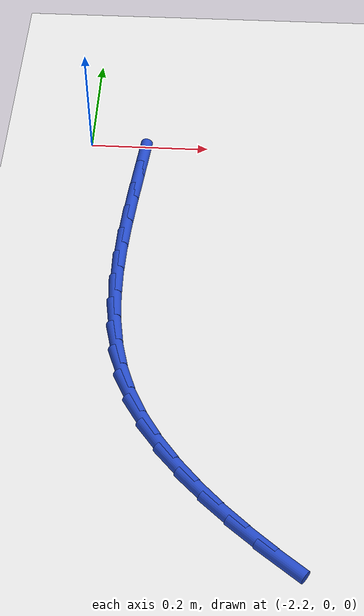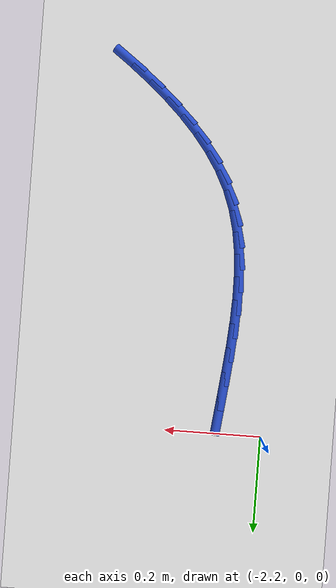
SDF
<sdf version="1.6">
 <world name="default">
  <model name="ground_plane">
   <static>1</static>
   <link name="link">
    <collision name="collision">
     <geometry><plane><normal>0 0 1</normal><size>100 100</size></plane></geometry>
     <surface><friction><ode><mu>100</mu><mu2>50</mu2></ode></friction></surface>
    </collision>
    <visual name="visual">
     <cast_shadows>0</cast_shadows>
     <geometry><plane><normal>0 0 1</normal><size>100 100</size></plane></geometry>
     <material>
      <script><uri>file://media/materials/scripts/gazebo.material</uri><name>Gazebo/WhiteGlow</name></script>
     </material>
    </visual>
   </link>
  </model>
  <model name="line">
   <link name="link_70">
    <pose>-2.109016750965219 -0.03887070346182893 0.01 0 1.57 1.4577025907081003</pose>
    <collision name="collision">
     <geometry><cylinder><radius>0.01</radius><length>0.08</length></cylinder></geometry>
    </collision>
    <visual name="visual">
     <material>
      <script><name>Gazebo/Blue</name><uri>file://media/materials/scripts/gazebo.material</uri></script>
     </material>
     <geometry><cylinder><radius>0.01</radius><length>0.08</length></cylinder></geometry>
    </visual>
   </link>
   <link name="link_71">
    <pose>-2.114923439792665 -0.09087610153658539 0.01 0 1.57 1.4601256677248313</pose>
    <collision name="collision">
     <geometry><cylinder><radius>0.01</radius><length>0.08</length></cylinder></geometry>
    </collision>
    <visual name="visual">
     <material>
      <script><name>Gazebo/Blue</name><uri>file://media/materials/scripts/gazebo.material</uri></script>
     </material>
     <geometry><cylinder><radius>0.01</radius><length>0.08</length></cylinder></geometry>
    </visual>
   </link>
   <link name="link_72">
    <pose>-2.120619317843265 -0.14213272842029662 0.01 0 1.57 1.4730457235114607</pose>
    <collision name="collision">
     <geometry><cylinder><radius>0.01</radius><length>0.08</length></cylinder></geometry>
    </collision>
    <visual name="visual">
     <material>
      <script><name>Gazebo/Blue</name><uri>file://media/materials/scripts/gazebo.material</uri></script>
     </material>
     <geometry><cylinder><radius>0.01</radius><length>0.08</length></cylinder></geometry>
    </visual>
   </link>
   <link name="link_73">
    <pose>-2.1255624448381787 -0.19254032319982312 0.01 0 1.57 1.4971617871678637</pose>
    <collision name="collision">
     <geometry><cylinder><radius>0.01</radius><length>0.08</length></cylinder></geometry>
    </collision>
    <visual name="visual">
     <material>
      <script><name>Gazebo/Blue</name><uri>file://media/materials/scripts/gazebo.material</uri></script>
     </material>
     <geometry><cylinder><radius>0.01</radius><length>0.08</length></cylinder></geometry>
    </visual>
   </link>
   <link name="link_74">
    <pose>-2.129210880498562 -0.24199862496202293 0.01 0 1.57 1.5333865847660677</pose>
    <collision name="collision">
     <geometry><cylinder><radius>0.01</radius><length>0.08</length></cylinder></geometry>
    </collision>
    <visual name="visual">
     <material>
      <script><name>Gazebo/Blue</name><uri>file://media/materials/scripts/gazebo.material</uri></script>
     </material>
     <geometry><cylinder><radius>0.01</radius><length>0.08</length></cylinder></geometry>
    </visual>
   </link>
   <link name="link_75">
    <pose>-2.131022684545576 -0.29040737279375656 0.01 0 1.57 -1.5588040823788425</pose>
    <collision name="collision">
     <geometry><cylinder><radius>0.01</radius><length>0.08</length></cylinder></geometry>
    </collision>
    <visual name="visual">
     <material>
      <script><name>Gazebo/Blue</name><uri>file://media/materials/scripts/gazebo.material</uri></script>
     </material>
     <geometry><cylinder><radius>0.01</radius><length>0.08</length></cylinder></geometry>
    </visual>
   </link>
   <link name="link_76">
    <pose>-2.130455916700377 -0.3376663057818838 0.01 0 1.57 -1.4951451370231805</pose>
    <collision name="collision">
     <geometry><cylinder><radius>0.01</radius><length>0.08</length></cylinder></geometry>
    </collision>
    <visual name="visual">
     <material>
      <script><name>Gazebo/Blue</name><uri>file://media/materials/scripts/gazebo.material</uri></script>
     </material>
     <geometry><cylinder><radius>0.01</radius><length>0.08</length></cylinder></geometry>
    </visual>
   </link>
   <link name="link_77">
    <pose>-2.126968636684125 -0.38367516301326415 0.01 0 1.57 -1.4164152090351878</pose>
    <collision name="collision">
     <geometry><cylinder><radius>0.01</radius><length>0.08</length></cylinder></geometry>
    </collision>
    <visual name="visual">
     <material>
      <script><name>Gazebo/Blue</name><uri>file://media/materials/scripts/gazebo.material</uri></script>
     </material>
     <geometry><cylinder><radius>0.01</radius><length>0.08</length></cylinder></geometry>
    </visual>
   </link>
   <link name="link_78">
    <pose>-2.1200189042179773 -0.42833368357475804 0.01 0 1.57 -1.3225063331948141</pose>
    <collision name="collision">
     <geometry><cylinder><radius>0.01</radius><length>0.08</length></cylinder></geometry>
    </collision>
    <visual name="visual">
     <material>
      <script><name>Gazebo/Blue</name><uri>file://media/materials/scripts/gazebo.material</uri></script>
     </material>
     <geometry><cylinder><radius>0.01</radius><length>0.08</length></cylinder></geometry>
    </visual>
   </link>
   <link name="link_79">
    <pose>-2.1090647790230928 -0.47154160655322375 0.01 0 1.57 -1.2145734001211714</pose>
    <collision name="collision">
     <geometry><cylinder><radius>0.01</radius><length>0.08</length></cylinder></geometry>
    </collision>
    <visual name="visual">
     <material>
      <script><name>Gazebo/Blue</name><uri>file://media/materials/scripts/gazebo.material</uri></script>
     </material>
     <geometry><cylinder><radius>0.01</radius><length>0.08</length></cylinder></geometry>
    </visual>
   </link>
   <link name="link_80">
    <pose>-2.0935643208206303 -0.5131986710355217 0.01 0 1.57 -1.09858608623336</pose>
    <collision name="collision">
     <geometry><cylinder><radius>0.01</radius><length>0.08</length></cylinder></geometry>
    </collision>
    <visual name="visual">
     <material>
      <script><name>Gazebo/Blue</name><uri>file://media/materials/scripts/gazebo.material</uri></script>
     </material>
     <geometry><cylinder><radius>0.01</radius><length>0.08</length></cylinder></geometry>
    </visual>
   </link>
   <link name="link_81">
    <pose>-2.073119520883767 -0.5532276812550262 0.01 0 1.57 -0.9930406484010695</pose>
    <collision name="collision">
     <geometry><cylinder><radius>0.01</radius><length>0.08</length></cylinder></geometry>
    </collision>
    <visual name="visual">
     <material>
      <script><name>Gazebo/Blue</name><uri>file://media/materials/scripts/gazebo.material</uri></script>
     </material>
     <geometry><cylinder><radius>0.01</radius><length>0.08</length></cylinder></geometry>
    </visual>
   </link>
   <link name="link_82">
    <pose>-2.0480579460356987 -0.5916677155082605 0.01 0 1.57 -0.9030074856389123</pose>
    <collision name="collision">
     <geometry><cylinder><radius>0.01</radius><length>0.08</length></cylinder></geometry>
    </collision>
    <visual name="visual">
     <material>
      <script><name>Gazebo/Blue</name><uri>file://media/materials/scripts/gazebo.material</uri></script>
     </material>
     <geometry><cylinder><radius>0.01</radius><length>0.08</length></cylinder></geometry>
    </visual>
   </link>
   <link name="link_83">
    <pose>-2.0189352869341857 -0.6285944091189847 0.01 0 1.57 -0.8273752394986924</pose>
    <collision name="collision">
     <geometry><cylinder><radius>0.01</radius><length>0.08</length></cylinder></geometry>
    </collision>
    <visual name="visual">
     <material>
      <script><name>Gazebo/Blue</name><uri>file://media/materials/scripts/gazebo.material</uri></script>
     </material>
     <geometry><cylinder><radius>0.01</radius><length>0.08</length></cylinder></geometry>
    </visual>
   </link>
   <link name="link_84">
    <pose>-1.986307317270731 -0.6640834107171851 0.01 0 1.57 -0.7645911894296382</pose>
    <collision name="collision">
     <geometry><cylinder><radius>0.01</radius><length>0.08</length></cylinder></geometry>
    </collision>
    <visual name="visual">
     <material>
      <script><name>Gazebo/Blue</name><uri>file://media/materials/scripts/gazebo.material</uri></script>
     </material>
     <geometry><cylinder><radius>0.01</radius><length>0.08</length></cylinder></geometry>
    </visual>
   </link>
   <link name="link_85">
    <pose>-1.9507298107368356 -0.6982103689328466 0.01 0 1.57 -0.7130690652214379</pose>
    <collision name="collision">
     <geometry><cylinder><radius>0.01</radius><length>0.08</length></cylinder></geometry>
    </collision>
    <visual name="visual">
     <material>
      <script><name>Gazebo/Blue</name><uri>file://media/materials/scripts/gazebo.material</uri></script>
     </material>
     <geometry><cylinder><radius>0.01</radius><length>0.08</length></cylinder></geometry>
    </visual>
   </link>
   <link name="link_86">
    <pose>-1.9127585410240004 -0.7310509323959541 0.01 0 1.57 -0.6713992311692655</pose>
    <collision name="collision">
     <geometry><cylinder><radius>0.01</radius><length>0.08</length></cylinder></geometry>
    </collision>
    <visual name="visual">
     <material>
      <script><name>Gazebo/Blue</name><uri>file://media/materials/scripts/gazebo.material</uri></script>
     </material>
     <geometry><cylinder><radius>0.01</radius><length>0.08</length></cylinder></geometry>
    </visual>
   </link>
   <link name="link_87">
    <pose>-1.8729492818237268 -0.7626807497364934 0.01 0 1.57 -0.6384374612555435</pose>
    <collision name="collision">
     <geometry><cylinder><radius>0.01</radius><length>0.08</length></cylinder></geometry>
    </collision>
    <visual name="visual">
     <material>
      <script><name>Gazebo/Blue</name><uri>file://media/materials/scripts/gazebo.material</uri></script>
     </material>
     <geometry><cylinder><radius>0.01</radius><length>0.08</length></cylinder></geometry>
    </visual>
   </link>
  </model>
 </world>
</sdf>
